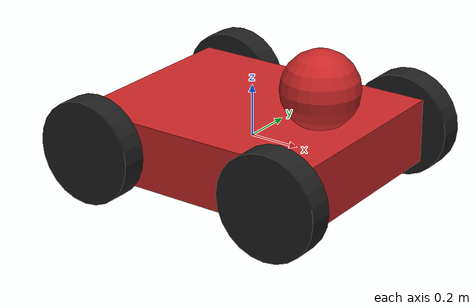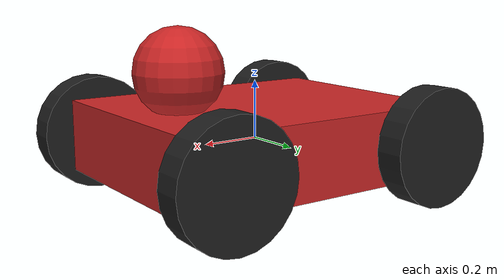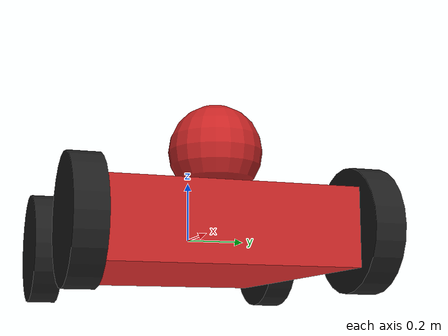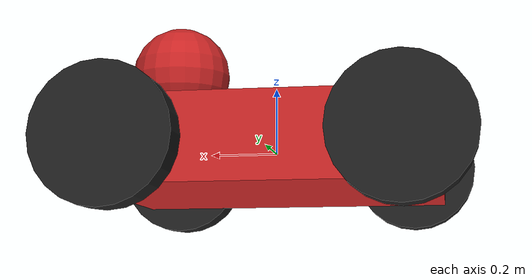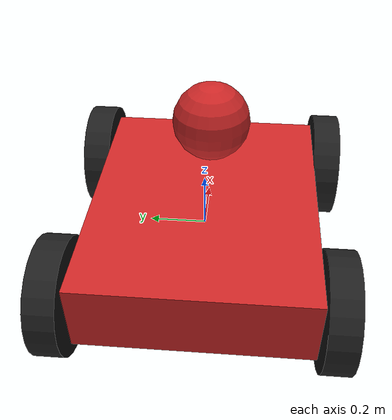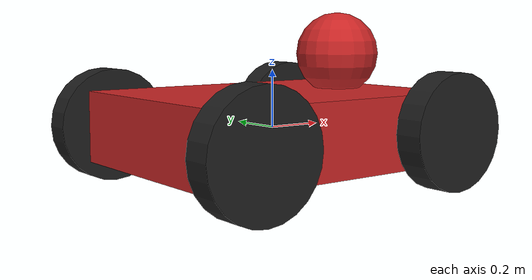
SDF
<sdf version='1.7'>
  <model name='ddrobot'>
    <link name='base_footprint'>
      <inertial>
        <pose>0 0 0 0 -0 0</pose>
        <mass>0.1</mass>
        <inertia>
          <ixx>0.0018</ixx>
          <ixy>0</ixy>
          <ixz>0</ixz>
          <iyy>0.0018</iyy>
          <iyz>0</iyz>
          <izz>0.0018</izz>
        </inertia>
      </inertial>
      <collision name='base_footprint_fixed_joint_lump__chasis_collision'>
        <pose>0.3 0 0.25 0 -0 0</pose>
        <geometry>
          <sphere>
            <radius>0.15</radius>
          </sphere>
        </geometry>
        <surface>
          <contact>
            <ode/>
          </contact>
          <friction>
            <ode/>
          </friction>
        </surface>
      </collision>
      <collision name='base_footprint_fixed_joint_lump__chasis_collision_1'>
        <pose>0 0 0 0 -0 0</pose>
        <geometry>
          <box>
            <size>1 0.8 0.25</size>
          </box>
        </geometry>
        <surface>
          <contact>
            <ode/>
          </contact>
          <friction>
            <ode/>
          </friction>
        </surface>
      </collision>
      <visual name='base_footprint_fixed_joint_lump__chasis_visual'>
        <pose>0.3 0 0.25 0 -0 0</pose>
        <geometry>
          <sphere>
            <radius>0.15</radius>
          </sphere>
        </geometry>
        <material>
          <script>
            <name>Gazebo/Red</name>
            <uri>file://media/materials/scripts/gazebo.material</uri>
          </script>
        </material>
      </visual>
      <visual name='base_footprint_fixed_joint_lump__chasis_visual_1'>
        <pose>0 0 0 0 -0 0</pose>
        <geometry>
          <box>
            <size>1 0.8 0.25</size>
          </box>
        </geometry>
        <material>
          <script>
            <name>Gazebo/Red</name>
            <uri>file://media/materials/scripts/gazebo.material</uri>
          </script>
        </material>
      </visual>
    </link>
    <joint name='joint_left_back_wheel' type='revolute'>
      <pose relative_to='base_footprint'>-0.4 -0.45 0 0 -0 0</pose>
      <parent>base_footprint</parent>
      <child>left_back_wheel</child>
      <axis>
        <xyz>0 1 0</xyz>
        <limit>
          <lower>-1e+16</lower>
          <upper>1e+16</upper>
        </limit>
        <dynamics>
          <spring_reference>0</spring_reference>
          <spring_stiffness>0</spring_stiffness>
        </dynamics>
      </axis>
    </joint>
    <link name='left_back_wheel'>
      <pose relative_to='joint_left_back_wheel'>0 0 0 0 -0 0</pose>
      <inertial>
        <pose>0 0 0 0 -0 0</pose>
        <mass>0.015</mass>
        <inertia>
          <ixx>0.0001625</ixx>
          <ixy>0</ixy>
          <ixz>0</ixz>
          <iyy>0.0001625</iyy>
          <iyz>0</iyz>
          <izz>0.0003</izz>
        </inertia>
      </inertial>
      <collision name='left_back_wheel_collision'>
        <pose>0 0 0 1.5708 -0 0</pose>
        <geometry>
          <cylinder>
            <length>0.1</length>
            <radius>0.2</radius>
          </cylinder>
        </geometry>
        <surface>
          <contact>
            <ode>
              <kp>1e+07</kp>
              <kd>1</kd>
            </ode>
          </contact>
          <friction>
            <ode>
              <mu>200</mu>
              <mu2>100</mu2>
            </ode>
          </friction>
        </surface>
      </collision>
      <visual name='left_back_wheel_visual'>
        <pose>0 0 0 1.5708 -0 0</pose>
        <geometry>
          <cylinder>
            <length>0.1</length>
            <radius>0.2</radius>
          </cylinder>
        </geometry>
        <material>
          <script>
            <name>Gazebo/Black</name>
            <uri>file://media/materials/scripts/gazebo.material</uri>
          </script>
        </material>
      </visual>
    </link>
    <joint name='joint_left_front_wheel' type='revolute'>
      <pose relative_to='base_footprint'>0.4 -0.45 0 0 -0 0</pose>
      <parent>base_footprint</parent>
      <child>left_front_wheel</child>
      <axis>
        <xyz>0 1 0</xyz>
        <limit>
          <lower>-1e+16</lower>
          <upper>1e+16</upper>
        </limit>
        <dynamics>
          <spring_reference>0</spring_reference>
          <spring_stiffness>0</spring_stiffness>
        </dynamics>
      </axis>
    </joint>
    <link name='left_front_wheel'>
      <pose relative_to='joint_left_front_wheel'>0 0 0 0 -0 0</pose>
      <inertial>
        <pose>0 0 0 0 -0 0</pose>
        <mass>0.015</mass>
        <inertia>
          <ixx>0.0001625</ixx>
          <ixy>0</ixy>
          <ixz>0</ixz>
          <iyy>0.0001625</iyy>
          <iyz>0</iyz>
          <izz>0.0003</izz>
        </inertia>
      </inertial>
      <collision name='left_front_wheel_collision'>
        <pose>0 0 0 1.5708 -0 0</pose>
        <geometry>
          <cylinder>
            <length>0.1</length>
            <radius>0.2</radius>
          </cylinder>
        </geometry>
        <surface>
          <contact>
            <ode>
              <kp>1e+07</kp>
              <kd>1</kd>
            </ode>
          </contact>
          <friction>
            <ode>
              <mu>200</mu>
              <mu2>100</mu2>
            </ode>
          </friction>
        </surface>
      </collision>
      <visual name='left_front_wheel_visual'>
        <pose>0 0 0 1.5708 -0 0</pose>
        <geometry>
          <cylinder>
            <length>0.1</length>
            <radius>0.2</radius>
          </cylinder>
        </geometry>
        <material>
          <script>
            <name>Gazebo/Black</name>
            <uri>file://media/materials/scripts/gazebo.material</uri>
          </script>
        </material>
      </visual>
    </link>
    <joint name='joint_right_back_wheel' type='revolute'>
      <pose relative_to='base_footprint'>-0.4 0.45 0 0 -0 0</pose>
      <parent>base_footprint</parent>
      <child>right_back_wheel</child>
      <axis>
        <xyz>0 1 0</xyz>
        <limit>
          <lower>-1e+16</lower>
          <upper>1e+16</upper>
        </limit>
        <dynamics>
          <spring_reference>0</spring_reference>
          <spring_stiffness>0</spring_stiffness>
        </dynamics>
      </axis>
    </joint>
    <link name='right_back_wheel'>
      <pose relative_to='joint_right_back_wheel'>0 0 0 0 -0 0</pose>
      <inertial>
        <pose>0 0 0 0 -0 0</pose>
        <mass>0.015</mass>
        <inertia>
          <ixx>0.0001625</ixx>
          <ixy>0</ixy>
          <ixz>0</ixz>
          <iyy>0.0001625</iyy>
          <iyz>0</iyz>
          <izz>0.0003</izz>
        </inertia>
      </inertial>
      <collision name='right_back_wheel_collision'>
        <pose>0 0 0 1.5708 -0 0</pose>
        <geometry>
          <cylinder>
            <length>0.1</length>
            <radius>0.2</radius>
          </cylinder>
        </geometry>
        <surface>
          <contact>
            <ode>
              <kp>1e+07</kp>
              <kd>1</kd>
            </ode>
          </contact>
          <friction>
            <ode>
              <mu>200</mu>
              <mu2>100</mu2>
            </ode>
          </friction>
        </surface>
      </collision>
      <visual name='right_back_wheel_visual'>
        <pose>0 0 0 1.5708 -0 0</pose>
        <geometry>
          <cylinder>
            <length>0.1</length>
            <radius>0.2</radius>
          </cylinder>
        </geometry>
        <material>
          <script>
            <name>Gazebo/Black</name>
            <uri>file://media/materials/scripts/gazebo.material</uri>
          </script>
        </material>
      </visual>
    </link>
    <joint name='joint_right_front_wheel' type='revolute'>
      <pose relative_to='base_footprint'>0.4 0.45 0 0 -0 0</pose>
      <parent>base_footprint</parent>
      <child>right_front_wheel</child>
      <axis>
        <xyz>0 1 0</xyz>
        <limit>
          <lower>-1e+16</lower>
          <upper>1e+16</upper>
        </limit>
        <dynamics>
          <spring_reference>0</spring_reference>
          <spring_stiffness>0</spring_stiffness>
        </dynamics>
      </axis>
    </joint>
    <link name='right_front_wheel'>
      <pose relative_to='joint_right_front_wheel'>0 0 0 0 -0 0</pose>
      <inertial>
        <pose>0 0 0 0 -0 0</pose>
        <mass>0.015</mass>
        <inertia>
          <ixx>0.0001625</ixx>
          <ixy>0</ixy>
          <ixz>0</ixz>
          <iyy>0.0001625</iyy>
          <iyz>0</iyz>
          <izz>0.0003</izz>
        </inertia>
      </inertial>
      <collision name='right_front_wheel_collision'>
        <pose>0 0 0 1.5708 -0 0</pose>
        <geometry>
          <cylinder>
            <length>0.1</length>
            <radius>0.2</radius>
          </cylinder>
        </geometry>
        <surface>
          <contact>
            <ode>
              <kp>1e+07</kp>
              <kd>1</kd>
            </ode>
          </contact>
          <friction>
            <ode>
              <mu>200</mu>
              <mu2>100</mu2>
            </ode>
          </friction>
        </surface>
      </collision>
      <visual name='right_front_wheel_visual'>
        <pose>0 0 0 1.5708 -0 0</pose>
        <geometry>
          <cylinder>
            <length>0.1</length>
            <radius>0.2</radius>
          </cylinder>
        </geometry>
        <material>
          <script>
            <name>Gazebo/Black</name>
            <uri>file://media/materials/scripts/gazebo.material</uri>
          </script>
        </material>
      </visual>
    </link>
    <static>0</static>
    <plugin name='gazebo_ros_control' filename='libgazebo_ros_control.so'/>
  </model>
</sdf>
